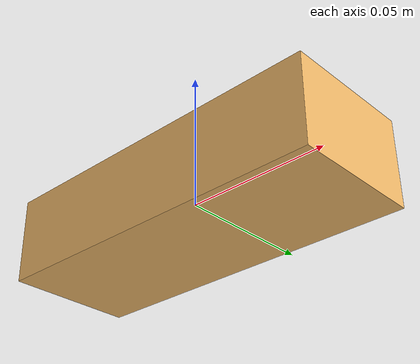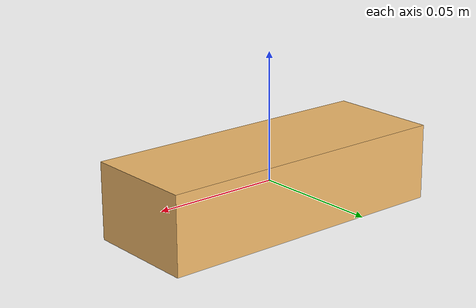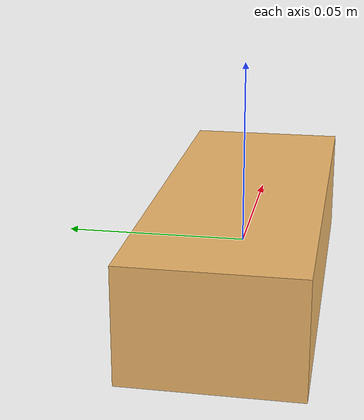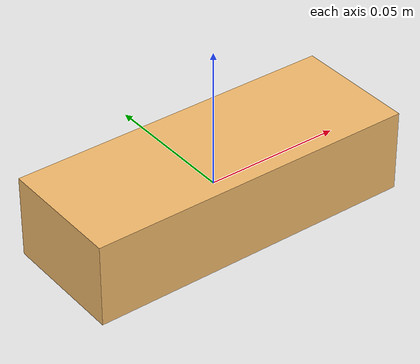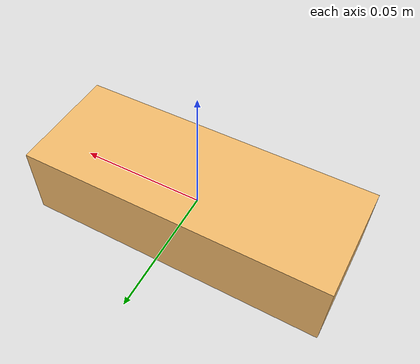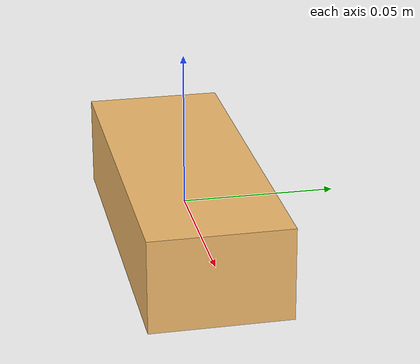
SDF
<?xml version="1.0"?>
<sdf version="1.9">
  <model name="bread">
    <static>false</static>
    <link name="bread_link">
      <inertial>
        <mass>0.030000</mass>
        <inertia>
          <ixx>0.000030000</ixx>
          <iyy>0.000030000</iyy>
          <izz>0.000030000</izz>
          <ixy>0</ixy>
          <ixz>0</ixz>
          <iyz>0</iyz>
        </inertia>
      </inertial>
      <visual name="bread_visual">
        <geometry>
          <mesh>
            <uri>meshes/bread.obj</uri>
          </mesh>
        </geometry>
        <material>
          <ambient>0.237500 0.182500 0.105000 1.000000</ambient>
          <diffuse>0.950000 0.730000 0.420000 1.000000</diffuse>
          <specular>0.120000 0.120000 0.120000 1.000000</specular>
        </material>
      </visual>
      <collision name="bread_bread_collision">
        <pose>0.000000011 -0.000000002 0.000000000 0 0 0</pose>
        <geometry>
          <box>
            <size>0.119999997 0.045000002 0.029999999</size>
          </box>
        </geometry>
        <surface>
          <friction>
            <ode>
              <mu>1.0</mu>
              <mu2>1.0</mu2>
            </ode>
          </friction>
        </surface>
      </collision>
    </link>
  </model>
</sdf>
